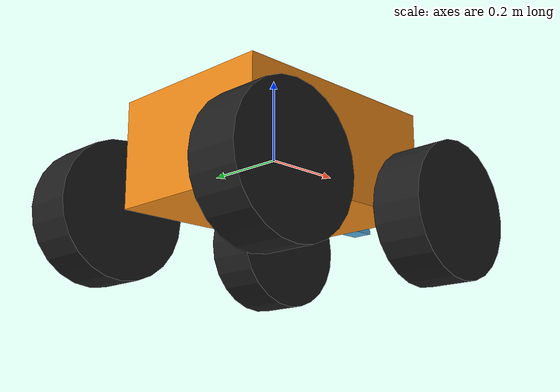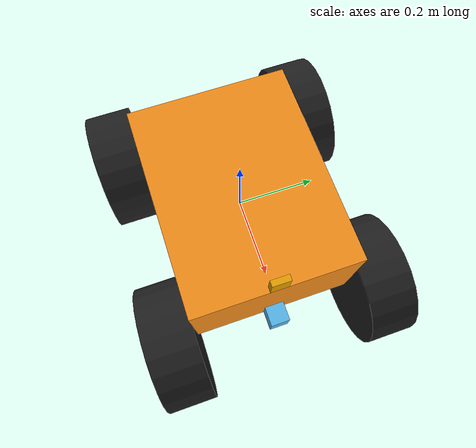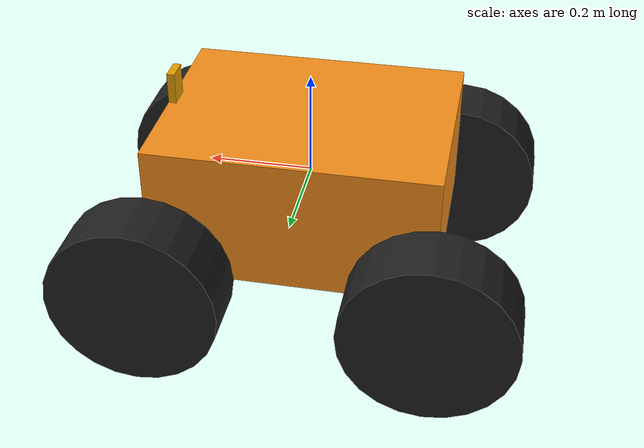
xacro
<?xml version="1.0" encoding="UTF-8"?>
<!-- A four wheel robot -->
<!--
    A four wheel mobile robot made for Tutorial 3 (for being spawned in gazebo)
-->
<robot name="fw_robot" xmlns:xacro="http://www.ros.org/wiki/xacro">
    <!-- Include other files -->
    <!-- Include the properties file -->
    <xacro:include filename="$(find basic_robotics)/urdf/fwb_parameters_t4.xacro" />
    <!-- Include headers (XACRO macros) file  -->
    <xacro:include filename="$(find basic_robotics)/urdf/fwb_macros.xacro" />
    <!-- Include file for Gazebo (general items) -->
    <xacro:include filename="$(find basic_robotics)/urdf/fwb_t4_general.gazebo" />
    <!-- Include the XACRO for camera -->
    <xacro:include filename="$(find basic_robotics)/urdf/fwb_camera_t4.xacro" />
    <!-- Include the XACRO for LidarScanner -->
    <xacro:include filename="$(find basic_robotics)/urdf/fwb_lidar_t4.xacro" />

    <!-- Main code -->
    <link name="dummy">
    </link>
    <!-- Main body link -->
    <link name="body">
        <inertial>
            <origin xyz="0.0 0.0 0.0" rpy="0.0 0.0 0.0"/>
            <mass value="${body_m}"/>
            <xacro:inertia_cuboid m="${body_m}" sx="${body_sx}" sy="${body_sy}" sz="${body_sz}" />
        </inertial>
        <visual>
            <origin xyz="0.0 0.0 0.0" rpy="0.0 0.0 0.0"/>
            <geometry>
                <box size="${body_sx} ${body_sy} ${body_sz}"/>
            </geometry>
        </visual>
        <collition>
            <origin xyz="0.0 0.0 0.0" rpy="0.0 0.0 0.0"/>
            <geometry>
                <box size="${body_sx} ${body_sy} ${body_sz}"/>
            </geometry>
        </collition>
    </link>
    <!-- Attach the dummy link -->
    <joint name="dummy_body_fixed" type="fixed">
        <origin xyz="0.0 0.0 0.0" rpy="0.0 0.0 0.0" />
        <parent link="dummy" />
        <child link="body" />
    </joint>
    <!-- Attach the wheels -->
    <xacro:add_wheel lname="fl_wheel" jname="fl_wheel_joint"
        sx="${body_sx/2}" sy="${(body_sy + wheel_h)/2}" sz="${-body_sz/2}"
        m="${wheel_m}" r="${wheel_r}" h="${wheel_h}"/>  <!-- Front Left -->
    <xacro:add_wheel lname="fr_wheel" jname="fr_wheel_joint"
        sx="${body_sx/2}" sy="${-(body_sy + wheel_h)/2}" sz="${-body_sz/2}"
        m="${wheel_m}" r="${wheel_r}" h="${wheel_h}"/>  <!-- Front Right -->
    <xacro:add_wheel lname="hl_wheel" jname="hl_wheel_joint"
        sx="${-body_sx/2}" sy="${(body_sy + wheel_h)/2}" sz="${-body_sz/2}"
        m="${wheel_m}" r="${wheel_r}" h="${wheel_h}"/>  <!-- Hind Left -->
    <xacro:add_wheel lname="hr_wheel" jname="hr_wheel_joint"
        sx="${-body_sx/2}" sy="${-(body_sy + wheel_h)/2}" sz="${-body_sz/2}"
        m="${wheel_m}" r="${wheel_r}" h="${wheel_h}"/>  <!-- Hind Right -->
</robot>

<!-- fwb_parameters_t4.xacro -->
<!-- This file contains parameters for the four wheel robot -->
<robot name="fw_robot" xmlns:xacro="http://www.ros.org/wiki/xacro" >
    <!-- Parameters for the robot body (cuboid) -->
    <xacro:property name="body_m" value="20" />    <!-- Mass (kg) -->
    <xacro:property name="body_sx" value="0.544" /> <!-- Side Length: X Axis (m) -->
    <xacro:property name="body_sy" value="0.420" /> <!-- Side Length: Y Axis (m) -->
    <xacro:property name="body_sz" value="0.260" /> <!-- Side Length: Z Axis (m) -->
    <!-- Parameters for robot wheels (cylinders) -->
    <xacro:property name="wheel_m" value="1" />  <!-- Mass (kg) -->
    <xacro:property name="wheel_r" value="0.165" /> <!-- Wheel radius (m) -->
    <xacro:property name="wheel_h" value="0.125" /> <!-- Wheel height (m) -->
    <!-- Parameters for the camera -->
    <xacro:property name="camera_m" value="0.060" />    <!-- Camera mass (kg) -->
    <xacro:property name="camera_sx" value="0.015" />   <!-- Camera side length: X Axis (m) -->
    <xacro:property name="camera_sy" value="0.045" />   <!-- Camera side length: Y Axis (m) -->
    <xacro:property name="camera_sz" value="0.060" />   <!-- Camera side length: Z Axis (m) -->
    <xacro:property name="camera_hfov" value="1.3962634" /> <!-- Camera's horizontal field of view (radians) -->
    <xacro:property name="camera_im_width" value="800" />   <!-- Camera's image width (pixels) -->
    <xacro:property name="camera_im_height" value="800" />  <!-- Camera's image height (pixels) -->
    <!-- Parameters for the LaserScanner -->
    <xacro:property name="lidar_m" value="0.120" /> <!-- LaserScanner mass (kg) -->
    <xacro:property name="lidar_sx" value="0.05" /> <!-- LaserScanner length: X Axis (m) -->
    <xacro:property name="lidar_sy" value="0.05" /> <!-- LaserScanner length: Y Axis (m) -->
    <xacro:property name="lidar_sz" value="0.07" /> <!-- LaserScanner length: Z Axis (m) -->
    <xacro:property name="lidar_ang_min" value="${radians(-50)}" /> <!-- LaserScanner minimum angle (rad) -->
    <xacro:property name="lidar_ang_max" value="${radians(50)}" /> <!-- LaserScanner maximum angle (rad) -->
    <xacro:property name="lidar_ang_samples" value="200" /> <!-- LaserScanner sampled in angle readings (integer) -->
</robot>

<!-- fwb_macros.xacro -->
<!-- This file contains different macros for four wheel robot -->
<robot name="fw_robot" xmlns:xacro="http://www.ros.org/wiki/xacro">

    <!-- List of 3D inertia tensors -->
    <!-- Link: https://en.wikipedia.org/wiki/List_of_moments_of_inertia#List_of_3D_inertia_tensors -->
    <!-- Inertia Matrix of a Cuboid -->
    <xacro:macro name="inertia_cuboid" params="m sx sy sz">
        <inertia ixx="${(1/12) * m * (sy ** 2 + sz ** 2)}" ixy="0.0" ixz="0.0"
                        iyy="${(1/12) * m * (sx ** 2 + sz ** 2)}" iyz="0.0"
                                izz="${(1/12) * m * (sy ** 2 + sx ** 2)}"/>
    </xacro:macro>
    <!-- Inertia Matrix of a Cube -->
    <xacro:macro name="inertia_cube" params="m sl">
        <xacro:inertia_cuboid m="${m}" sx="${sl}" sy="${sl}" sz="${sl}" />
    </xacro:macro>
    <!-- Inertia Matrix of a Cylinder -->
    <xacro:macro name="inertia_cylinder" params="m r h">
        <inertia ixx="${(1/12) * m * (3 * (r ** 2) + h ** 2)}" ixy="0.0" ixz="0.0"
                        iyy="${(1/12) * m * (3 * (r ** 2) + h ** 2)}" iyz="0.0"
                                izz="${(1/2) * m * (r ** 2)}"/>
    </xacro:macro>

    <!-- Macros for the program -->
    <!-- Insert an entire wheel -->
    <xacro:macro name="add_wheel" params="sx sy sz lname jname m r h">
        <!-- Link -->
        <link name="${lname}">
            <inertial>
                <origin xyz="0.0 0.0 0.0" rpy="0.0 0.0 0.0"/>
                <mass value="${m}"/>
                <xacro:inertia_cylinder m="${m}" r="${r}" h="${h}" />
            </inertial>
            <visual>
                <origin xyz="0.0 0.0 0.0" rpy="0.0 0.0 0.0"/>
                <geometry>
                    <cylinder radius="${r}" length="${h}"/>
                </geometry>
            </visual>
            <collision>
                <origin xyz="0.0 0.0 0.0" rpy="0.0 0.0 0.0"/>
                <geometry>
                    <cylinder radius="${r}" length="${h}"/>
                </geometry>
            </collision>
        </link>
        <!-- Joint from wheel to body -->
        <joint name="${jname}" type="continuous">
            <origin xyz="${sx} ${sy} ${sz}" rpy="${radians(-90)} 0.0 0.0"/>
            <parent link="body"/>
            <child link="${lname}"/>
            <axis xyz="0.0 0.0 1.0"/>
        </joint>
    </xacro:macro>
</robot>

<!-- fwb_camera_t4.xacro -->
<!--
    All the tags for the camera link and the plugin
-->
<robot name="fw_robot" xmlns:xacro="http://www.ros.org/wiki/xacro">
    <!-- Include the parameters file -->
    <xacro:include filename="$(find basic_robotics)/urdf/fwb_parameters_t4.xacro" />
    <!-- Include the MACROs -->
    <xacro:include filename="$(find basic_robotics)/urdf/fwb_macros.xacro" />

        <!--
            This is for the camera link
        -->
    <link name="camera_link">
        <inertial>
            <origin xyz="0.0 0.0 0.0" rpy="0.0 0.0 0.0" />
            <mass value="${camera_m}" />
            <xacro:inertia_cuboid m="${camera_m}" sx="${camera_sx}" sy="${camera_sy}" sz="${camera_sz}" />
        </inertial>
        <visual>
            <origin xyz="0.0 0.0 0.0" rpy="0.0 0.0 0.0" />
            <geometry>
                <box size="${camera_sx} ${camera_sy} ${camera_sz}" />
            </geometry>
        </visual>
        <collision>
            <origin xyz="0.0 0.0 0.0" rpy="0.0 0.0 0.0" />
            <geometry>
                <box size="${camera_sx} ${camera_sy} ${camera_sz}" />
            </geometry>
        </collision>
    </link>
    <joint name="camera_joint" type="fixed">
        <origin xyz="${(body_sx-camera_sx)/2} 0.0 ${(body_sz+camera_sz)/2}"/>
        <parent link="body" />
        <child link="camera_link" />
    </joint>
    <gazebo reference="camera_link">
        <sensor type="camera" name="cam_1">
            <!-- Set the update rate -->
            <update_rate>30.0</update_rate>
            <camera name="cam_1_head">
                <!-- Horizontal Field of View -->
                <horizontal_fov>${camera_hfov}</horizontal_fov>
                <!-- Description of the image -->
                <image>
                    <width>${camera_im_width}</width>
                    <height>${camera_im_height}</height>
                    <format>R8G8B8</format>
                </image>
                <!-- Clip the viewing range (near and far) -->
                    <!--
                        Reference: http://sdformat.org/spec?ver=1.8&elem=sensor#camera_clip
                    -->
                <clip>
                    <near>0.01</near>   <!-- Beginning of view (m) -->
                    <far>300</far>  <!-- End of view (m) -->
                </clip>
                <!-- Add simulated camera paraemters -->
                <noise>
                    <type>gaussian</type>   <!-- Gaussian noise -->
                    <mean>0.0</mean>    <!-- Mean value of noise -->
                    <stddev>0.007</stddev>  <!-- Standard deviation -->
                </noise>
            </camera>
            <!-- Load plugin for the camera -->
            <plugin name="cam_1_plugin" filename="libgazebo_ros_camera.so">
                <!-- Update rate for publishing data -->
                <updateRate>0.0</updateRate>
                <!-- Camera name (node handler suffix) -->
                <cameraName>fwb_robot/cam_1</cameraName>
                <!-- Topic name for the camera images -->
                <imageTopicName>image_raw</imageTopicName>
                <!-- Topic name for the camera information -->
                <cameraInfoTopicName>camera_info</cameraInfoTopicName>
                <!-- Frame name for the camera -->
                <frameName>camera_link</frameName>
            </plugin>
        </sensor>
    </gazebo>
</robot>

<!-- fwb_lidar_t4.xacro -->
<!--
    All tags for the LiDAR link and plugin. The LiDAR used here is mainly a Laser Scanner.
-->
<robot name="fw_robot" xmlns:xacro="http://www.ros.org/wiki/xacro">
    <!-- Include the parameters file -->
    <xacro:include filename="$(find basic_robotics)/urdf/fwb_parameters_t4.xacro" />
    <!-- Include the MACROS -->
    <xacro:include filename="$(find basic_robotics)/urdf/fwb_macros.xacro" />

    <link name="lidar_link">
        <inertial>
            <origin xyz="0.0 0.0 0.0" rpy="0.0 0.0 0.0" />
            <mass value="${lidar_m}" />
            <xacro:inertia_cuboid m="${lidar_m}" sx="${lidar_sx}" sy="${lidar_sy}" sz="${lidar_sz}" />
        </inertial>
        <visual>
            <origin xyz="0.0 0.0 0.0" rpy="0.0 0.0 0.0" />
            <geometry>
                <box size="${lidar_sx} ${lidar_sy} ${lidar_sz}" />
            </geometry>
        </visual>
        <collision>
            <origin xyz="0.0 0.0 0.0" rpy="0.0 0.0 0.0" />
            <geometry>
                <box size="${lidar_sx} ${lidar_sy} ${lidar_sz}" />
            </geometry>
        </collision>
    </link>
    <joint name="lidar_joint" type="fixed">
        <origin xyz="${(body_sx+lidar_sx)/2} 0.0 ${(-body_sz+lidar_sz)/2}" />
        <parent link="body" />
        <child link="lidar_link" />
    </joint>
    <gazebo reference="lidar_link">
            <!--
                Ref: http://sdformat.org/spec?ver=1.8&elem=sensor#link_sensor
                Parsing code: https://github.com/osrf/sdformat/blob/sdf11/src/Sensor.cc
            -->
        <sensor type="gpu_ray" name="lidar_1">
            <!-- Update rate -->
            <update_rate>30.0</update_rate>
            <!-- Visualize the sensor -->
            <visualize>true</visualize>
            <ray>
                <scan>
                    <horizontal>
                        <samples>${lidar_ang_samples}</samples>
                        <min_angle>${lidar_ang_min}</min_angle>
                        <max_angle>${lidar_ang_max}</max_angle>
                    </horizontal>
                </scan>
                <range>
                    <min>0.10</min>
                    <max>30.0</max>
                    <resolution>0.01</resolution>
                </range>
                    <!--
                        Ref: http://sdformat.org/spec?ver=1.8&elem=sensor#lidar_noise
                    -->
                <noise>
                    <type>gaussian</type>
                    <mean>0.0</mean>
                    <stddev>0.01</stddev>
                </noise>
            </ray>
            <plugin name="lidar_1_plugin" filename="libgazebo_ros_gpu_laser.so">
                <!-- Frame name -->
                <frameName>lidar_link</frameName>
                <!-- Topic name for the data -->
                <topicName>lidar_1/sensor_data</topicName>
            </plugin>
        </sensor>
    </gazebo>
</robot>
